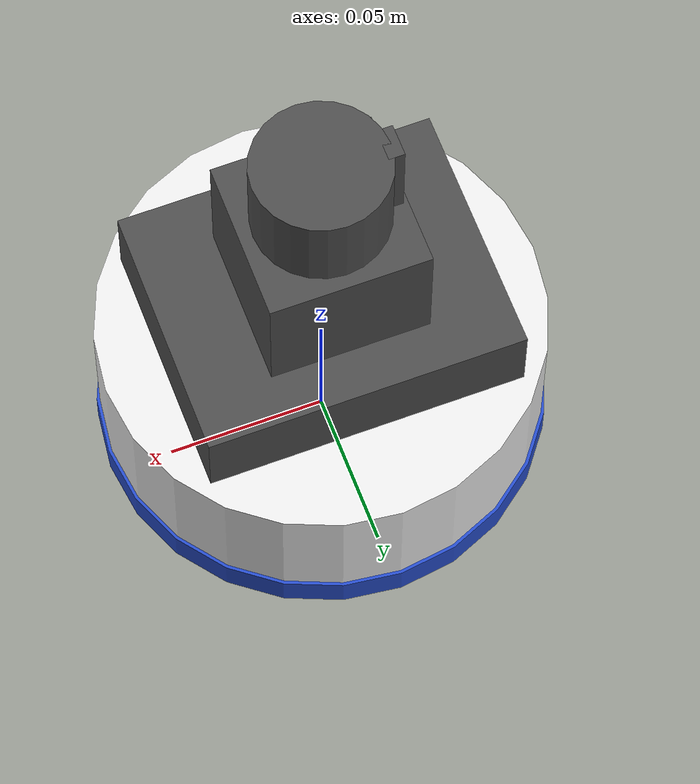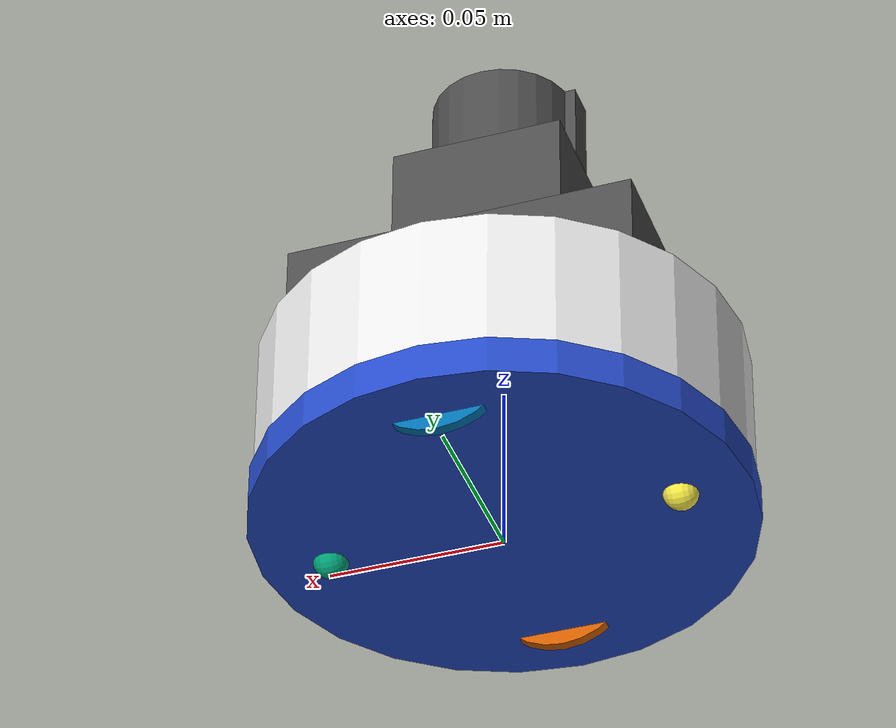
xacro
<?xml version="1.0"?>

<robot xmlns:xacro="http://www.ros.org/wiki/xacro" name="khepera4_lrf">
  <xacro:include filename="$(find robosar_gazebo_sim)/urdf/khepera_body.xacro" />
  <xacro:include filename="$(find robosar_gazebo_sim)/urdf/khepera_camera.xacro" />
  <xacro:include filename="$(find robosar_gazebo_sim)/urdf/khepera_wheel.xacro" />
  <xacro:include filename="$(find robosar_gazebo_sim)/urdf/khepera_caster_wheel.xacro" />
  <xacro:include filename="$(find robosar_gazebo_sim)/urdf/khepera_lrf.xacro" />

  <xacro:khepera_body />
  <xacro:khepera_caster_wheel prefix="front" offset_dir="1" />
  <xacro:khepera_caster_wheel prefix="rear" offset_dir="-1" />
  <xacro:khepera_wheel prefix="left" offset_dir="1" />
  <xacro:khepera_wheel prefix="right" offset_dir="-1" />
  <xacro:khepera_lrf />

  <!-- Differential drive controller -->
  <gazebo>
    <plugin name="differential_drive_controller" filename="libgazebo_ros_diff_drive.so">
      <!-- Plugin update rate in Hz -->
      <updateRate>10</updateRate>
      <!-- Name of left joint, defaults to `left_joint` -->
      <leftJoint>base_to_left_wheel</leftJoint>
      <!-- Name of right joint, defaults to `right_joint` -->
      <rightJoint>base_to_right_wheel</rightJoint>
      <!-- The distance from the center of one wheel to the other, in meters, defaults to 0.34 m -->
      <wheelSeparation>0.1054</wheelSeparation>
      <!-- Diameter of the wheels, in meters, defaults to 0.15 m -->
      <wheelDiameter>0.042</wheelDiameter>
      <!-- Wheel acceleration, in rad/s^2, defaults to 0.0 rad/s^2 -->
      <wheelAcceleration>1.0</wheelAcceleration>
      <!-- Maximum torque which the wheels can produce, in Nm, defaults to 5 Nm -->
      <wheelTorque>20</wheelTorque>
      <!-- Topic to receive geometry_msgs/Twist message commands, defaults to `cmd_vel` -->
      <commandTopic>cmd_vel</commandTopic>
      <!-- Topic to publish nav_msgs/Odometry messages, defaults to `odom` -->
      <odometryTopic>odom_data_euler</odometryTopic>
      <!-- Odometry frame, defaults to `odom` -->
      <odometryFrame>odom</odometryFrame>
      <!-- Robot frame to calculate odometry from, defaults to `base_footprint` -->
      <robotBaseFrame>base_footprint</robotBaseFrame>
      <!-- Odometry source, 0 for ENCODER, 1 for WORLD, defaults to WORLD -->
      <odometrySource>0</odometrySource>
      <!-- Set to true to publish transforms for the wheel links, defaults to false -->
      <publishWheelTF>false</publishWheelTF>
      <!-- Set to true to publish transforms for the odometry, defaults to true -->
      <publishOdom>true</publishOdom>
      <!-- Set to true to publish sensor_msgs/JointState on /joint_states for the wheel joints, defaults to false -->
      <publishWheelJointState>true</publishWheelJointState>
      <!-- Set to true to swap right and left wheels, defaults to true -->
      <legacyMode>false</legacyMode>
    </plugin>
  </gazebo>

</robot>

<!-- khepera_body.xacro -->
<robot xmlns:xacro="http://www.ros.org/wiki/xacro" name="khepera4_lrf">
<xacro:macro name="khepera_body">

  <link name="base_link">
    <visual>
      <origin xyz="0 0 0.0315" rpy="0 0 -1.570796"/>
      <geometry>
        <cylinder radius="0.069" length="0.053"/>
      </geometry>
    </visual>
    <collision>
      <origin xyz="0 0 0.0315" rpy="0 0 -1.570796"/>
      <geometry>
        <cylinder radius="0.069" length="0.053"/>
      </geometry>
    </collision>
    <inertial>
      <mass value="0.6"/>
      <inertia ixx="${1/12*0.6*(3*0.0704*0.0704+0.0577*0.0577)}" ixy="0" ixz="0" iyy="${1/12*0.6*(3*0.0704*0.0704+0.0577*0.0577)}" iyz="0" izz="${1/2*0.6*0.0704*0.0704}"/>
    </inertial>
  </link>

  <link name="ring_link">
    <visual>
      <origin xyz="0 0 0.01" rpy="0 0 -1.570796"/>
      <geometry>
        <cylinder radius="0.07" length="0.011"/>
      </geometry>
    </visual>
    <collision>
      <origin xyz="0 0 0.01" rpy="0 0 -1.570796"/>
      <geometry>
        <cylinder radius="0.07" length="0.011"/>
      </geometry>
    </collision>
  </link>

  <joint name="base_to_ring" type="fixed">
    <parent link="base_link"/>
    <child link="ring_link"/>
    <origin xyz="0 0 0" rpy="0 0 0"/>
  </joint>

  <gazebo reference="base_link">
    <material>Gazebo/White</material>
  </gazebo>

  <gazebo reference="ring_link">
    <material>Gazebo/Blue</material>
  </gazebo>

</xacro:macro>
</robot>

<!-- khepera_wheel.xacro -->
<robot xmlns:xacro="http://www.ros.org/wiki/xacro" name="khepera4_lrf">
<xacro:macro name="khepera_wheel" params="prefix offset_dir">
  <!-- offset_dir should be -1 for right weel, 1 for left wheel -->

  <link name="${prefix}_wheel">
    <visual>
      <origin xyz="0 0 0" rpy="-1.570796 0 -1.5708"/>
      <geometry>
        <cylinder radius="0.021" length="0.003"/>
      </geometry>
    </visual>
    <collision>
      <origin xyz="0 0 0" rpy="-1.570796 0 -1.5708"/>
      <geometry>
        <cylinder radius="0.021" length="0.003"/>
      </geometry>
    </collision>
    <inertial>
      <origin xyz="0 0 0" rpy="-1.570796 0 -1.5708"/>
      <mass value="0.1"/>
      <inertia ixx="${1/12*0.1*(3*.021*.021+.0059*.0059)}" ixy="0.0" ixz="0.0" iyy="${1/12*0.1*(3*.021*.021+.0059*.0059)}" iyz="0.0" izz="${1/2*0.1*.021*.021}"/>
    </inertial>
  </link>

  <joint name="base_to_${prefix}_wheel" type="continuous">
    <parent link="base_link"/>
    <child link="${prefix}_wheel"/>
    <axis xyz="-1 0 0"/>
    <limit effort="10" velocity="47.61"/>
    <origin xyz="0 ${offset_dir*0.0527} 0.021" rpy="1.570796 0 -1.570796"/>
  </joint>

</xacro:macro>
</robot>

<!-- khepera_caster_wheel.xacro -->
<robot xmlns:xacro="http://www.ros.org/wiki/xacro" name="khepera4_lrf">
<xacro:macro name="khepera_caster_wheel" params="prefix offset_dir">
  <!-- offset_dir should be -1 for rear caster weel, 1 for front caster wheel -->

  <link name="${prefix}_caster_wheel">
    <visual>
      <geometry>
        <sphere radius="0.005"/>
      </geometry>
    </visual>
    <collision>
      <geometry>
        <sphere radius="0.005"/>
      </geometry>
    </collision>
  </link>

  <joint name="base_to_${prefix}_caster_wheel" type="fixed">
    <parent link="base_link"/>
    <child link="${prefix}_caster_wheel"/>
    <origin xyz="${offset_dir*0.05} 0 0.00505" rpy="1.570796 0 -1.570796"/>
  </joint>

</xacro:macro>
</robot>

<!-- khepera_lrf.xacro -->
<robot xmlns:xacro="http://www.ros.org/wiki/xacro" name="khepera4_lrf">
<xacro:macro name="khepera_lrf">

  <link name="lrf_link">
    <visual>
      <origin xyz="0 0 0.003" rpy="0 0 0"/>
      <geometry>
        <cylinder radius="0.021" length="0.029"/>
      </geometry>
    </visual>
    <visual>
      <origin xyz="-0.021 0 0.003" rpy="0 0 0"/>
      <geometry>
        <box size="0.005 0.010 0.029"/>
      </geometry>
    </visual>
    <visual>
      <origin xyz="0 0 -0.032" rpy="0 0 0"/>
      <geometry>
        <box size="0.050 0.050 0.041"/>
      </geometry>
    </visual>
    <visual>
      <origin xyz="0 0 -0.065" rpy="0 0 0"/>
      <geometry>
        <box size="0.100 0.080 0.025"/>
      </geometry>
    </visual>
    <collision>
      <origin xyz="0 0 0.003" rpy="0 0 0"/>
      <geometry>
        <cylinder radius="0.021" length="0.029"/>
      </geometry>
    </collision>
    <collision>
      <origin xyz="-0.021 0 0.003" rpy="0 0 0"/>
      <geometry>
        <box size="0.005 0.010 0.029"/>
      </geometry>
    </collision>
    <collision>
      <origin xyz="0 0 -0.032" rpy="0 0 0"/>
      <geometry>
        <box size="0.050 0.050 0.041"/>
      </geometry>
    </collision>
    <collision>
      <origin xyz="0 0 -0.065" rpy="0 0 0"/>
      <geometry>
        <box size="0.100 0.080 0.025"/>
      </geometry>
    </collision>
  </link>

  <joint name="base_to_lrf" type="fixed">
    <parent link="base_link"/>
    <child link="lrf_link"/>
    <origin xyz="0 0 0.1355" rpy="0 0 0"/>
  </joint>

  <gazebo reference="lrf_link">
    <material>Gazebo/DarkGrey</material>
    <sensor type="ray" name="head_hokuyo_sensor">
      <pose>0 0 0 0 0 0</pose>
      <visualize>false</visualize>
      <update_rate>10</update_rate>
      <ray>
        <scan>
          <horizontal>
            <samples>682</samples>
            <resolution>1</resolution>
            <min_angle>-2.0944</min_angle>
            <max_angle>2.0944</max_angle>
          </horizontal>
        </scan>
        <range>
          <min>0.022</min>
          <max>5.500</max>
          <resolution>0.001</resolution>
        </range>
        <noise>
          <type>gaussian</type>
          <mean>0.0</mean>
          <stddev>0.01</stddev>
        </noise>
      </ray>
      <plugin name="gazebo_ros_head_hokuyo_controller" filename="libgazebo_ros_laser.so">
        <topicName>scan</topicName>
        <frameName>base_footprint</frameName>
      </plugin>
    </sensor>
  </gazebo>
</xacro:macro>
</robot>
